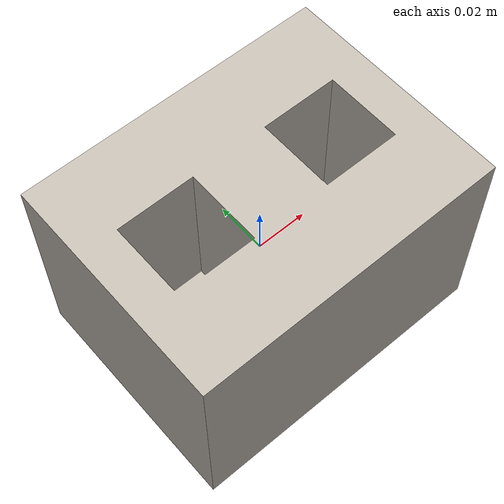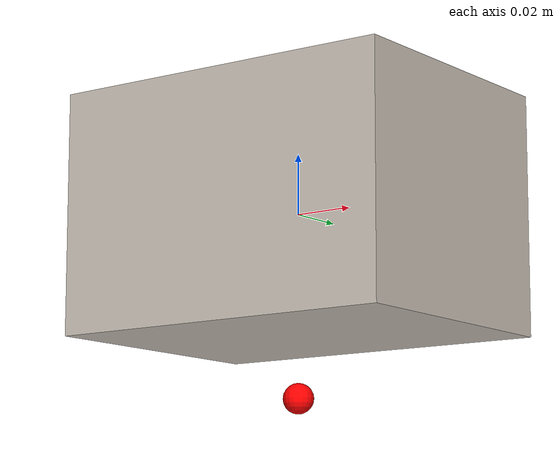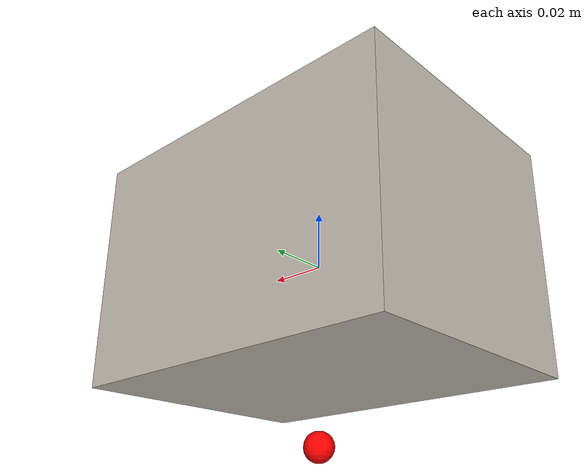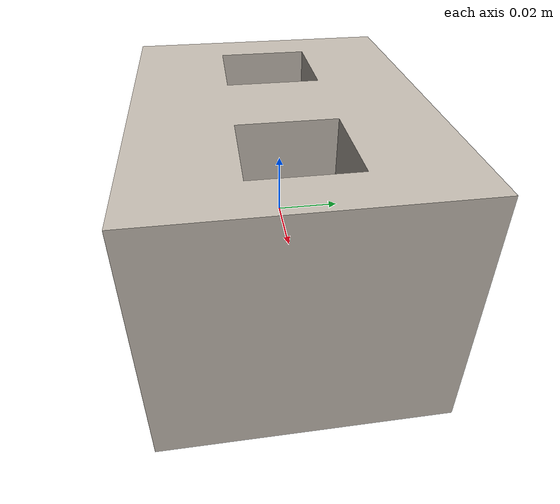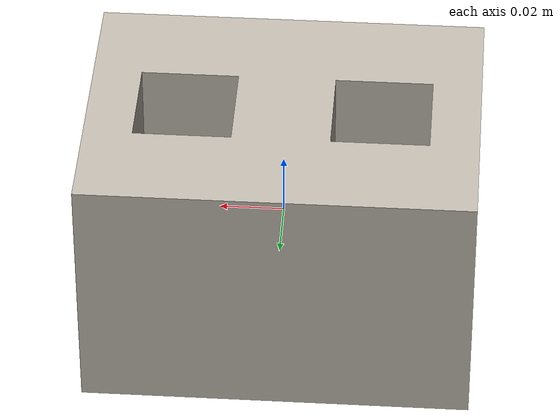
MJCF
<mujoco model="bread">
  <asset>
    <mesh file="meshes/square.stl" name="square_mesh" scale="0.001 0.001 0.001"/>
    <texture file="../textures/brass-ambra.png" type="cube" name="brass-metal"/>
    <material name="bmetal"  reflectance="1.0" shininess="1.0" specular="1.0" texrepeat="1 1" texture="brass-metal" texuniform="true"/>
  </asset>
  <worldbody>
    <body>
      <body name="object" pos="-0.06 0.045 -0.04"   >
        <geom pos="0 0 0"  quat="0.707107 0.707107 0 0" mesh="square_mesh" type="mesh" solimp="0.998 0.998 0.001" solref="0.001 1" density="100" friction="0.95 0.3 0.1"  group="0" condim="4" material='bmetal'/>
      </body>
      <site rgba="1 0 0 1" size="0.005" pos="0 0 -0.06" name="bottom_site"/>
      <site rgba="0 0 0 0" size="0.005" pos="0 0 0.04" name="top_site"/>
      <site rgba="0 0 0 0" size="0.005" pos="0.08 0.06 0" name="horizontal_radius_site"/>
    </body>
  </worldbody>
</mujoco>
